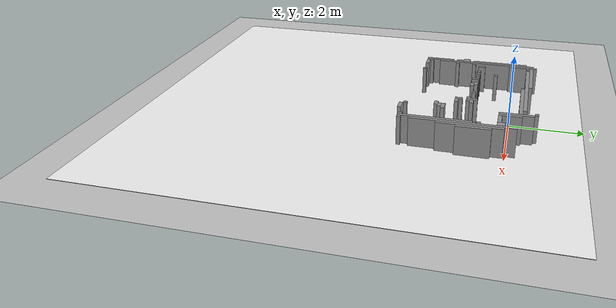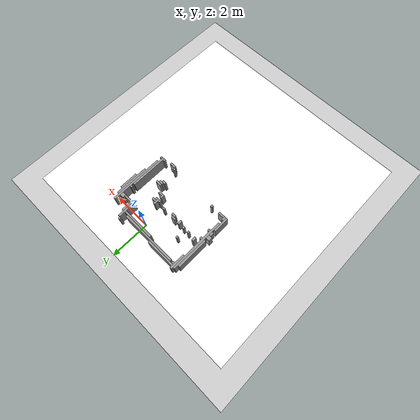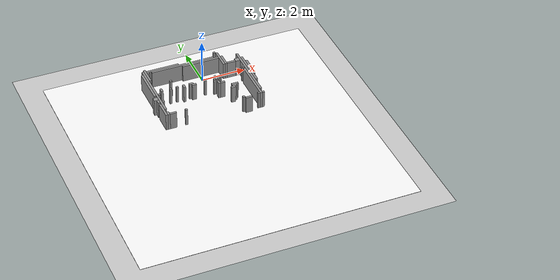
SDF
<?xml version="1.0"?>
<sdf version="1.6">
  <world name="default">

    <!-- Ground Plane -->
    <model name="ground_plane">
      <static>true</static>
      <link name="link">
        <collision name="collision">
          <geometry>
            <plane>
              <normal>0 0 1</normal>
              <size>100 100</size>
            </plane>
          </geometry>
          <surface>
            <friction>
              <ode>
                <mu>100</mu>
                <mu2>50</mu2>
              </ode>
            </friction>
          </surface>
        </collision>
        <visual name="visual">
          <cast_shadows>false</cast_shadows>
          <geometry>
            <plane>
              <normal>0 0 1</normal>
              <size>100 100</size>
            </plane>
          </geometry>
          <material>
            <ambient>0.8 0.8 0.8 1</ambient>
            <diffuse>0.8 0.8 0.8 1</diffuse>
            <specular>0.1 0.1 0.1 1</specular>
          </material>
        </visual>
      </link>
    </model>

    <!-- Sun -->
    <light name="sun" type="directional">
      <cast_shadows>true</cast_shadows>
      <pose>0 0 10 0 0 0</pose>
      <diffuse>0.8 0.8 0.8 1</diffuse>
      <specular>0.2 0.2 0.2 1</specular>
      <attenuation>
        <range>1000</range>
        <constant>0.9</constant>
        <linear>0.01</linear>
        <quadratic>0.001</quadratic>
      </attenuation>
      <direction>-0.5 0.1 -0.9</direction>
    </light>

    <scene>
      <shadows>false</shadows>
    </scene>

    <!-- Camera: top-down view centered on map -->
    <gui fullscreen='0'>
      <camera name='user_camera'>
        <pose frame=''>-0.8 -2.7 12.0 0 1.5708 0</pose>
        <view_controller>orbit</view_controller>
        <projection_type>perspective</projection_type>
      </camera>
    </gui>

    <!-- Balanced physics: stable contacts, reasonable WSL2 performance -->
    <physics type="ode">
      <real_time_update_rate>200.0</real_time_update_rate>
      <max_step_size>0.003</max_step_size>
      <real_time_factor>1</real_time_factor>
      <ode>
        <solver>
          <type>quick</type>
          <iters>80</iters>
          <precon_iters>0</precon_iters>
          <sor>1.400000</sor>
          <use_dynamic_moi_rescaling>1</use_dynamic_moi_rescaling>
        </solver>
        <constraints>
          <cfm>0.00001</cfm>
          <erp>0.2</erp>
          <contact_max_correcting_vel>2.0</contact_max_correcting_vel>
          <contact_surface_layer>0.01000</contact_surface_layer>
        </constraints>
      </ode>
    </physics>

    <!-- Gazebo ROS state plugin: provides /set_entity_state service -->
    <plugin name="gazebo_ros_state" filename="libgazebo_ros_state.so">
      <ros>
        <namespace>/</namespace>
      </ros>
      <update_rate>50</update_rate>
    </plugin>

    <!-- Map walls from SLAM data -->
    <include>
      <uri>model://map_walls</uri>
    </include>

  </world>
</sdf>

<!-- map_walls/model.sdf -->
<sdf version="1.6">
  <model name="map_walls">
    <static>true</static>
    <link name="walls">
      <collision name="collision_0">
        <pose>0.8400 0.7000 0.4000 0 0 0</pose>
        <geometry>
          <box><size>0.1000 0.1000 0.8</size></box>
        </geometry>
      </collision>
      <collision name="collision_1">
        <pose>-2.4600 0.2500 0.4000 0 0 0</pose>
        <geometry>
          <box><size>0.1000 0.8000 0.8</size></box>
        </geometry>
      </collision>
      <collision name="collision_2">
        <pose>0.9400 0.2000 0.4000 0 0 0</pose>
        <geometry>
          <box><size>0.1000 0.9000 0.8</size></box>
        </geometry>
      </collision>
      <collision name="collision_3">
        <pose>-2.5600 -0.8500 0.4000 0 0 0</pose>
        <geometry>
          <box><size>0.1000 2.8000 0.8</size></box>
        </geometry>
      </collision>
      <collision name="collision_4">
        <pose>-1.6600 0.5000 0.4000 0 0 0</pose>
        <geometry>
          <box><size>1.5000 0.1000 0.8</size></box>
        </geometry>
      </collision>
      <collision name="collision_5">
        <pose>-2.3600 0.4000 0.4000 0 0 0</pose>
        <geometry>
          <box><size>0.1000 0.1000 0.8</size></box>
        </geometry>
      </collision>
      <collision name="collision_6">
        <pose>-0.7600 0.4000 0.4000 0 0 0</pose>
        <geometry>
          <box><size>2.9000 0.1000 0.8</size></box>
        </geometry>
      </collision>
      <collision name="collision_7">
        <pose>-2.6600 -0.4500 0.4000 0 0 0</pose>
        <geometry>
          <box><size>0.1000 1.6000 0.8</size></box>
        </geometry>
      </collision>
      <collision name="collision_8">
        <pose>0.0400 0.3000 0.4000 0 0 0</pose>
        <geometry>
          <box><size>1.7000 0.1000 0.8</size></box>
        </geometry>
      </collision>
      <collision name="collision_9">
        <pose>1.0400 0.0500 0.4000 0 0 0</pose>
        <geometry>
          <box><size>0.1000 0.6000 0.8</size></box>
        </geometry>
      </collision>
      <collision name="collision_10">
        <pose>1.7400 -1.1000 0.4000 0 0 0</pose>
        <geometry>
          <box><size>0.1000 2.7000 0.8</size></box>
        </geometry>
      </collision>
      <collision name="collision_11">
        <pose>1.5900 -0.1500 0.4000 0 0 0</pose>
        <geometry>
          <box><size>0.2000 0.2000 0.8</size></box>
        </geometry>
      </collision>
      <collision name="collision_12">
        <pose>1.8400 -0.9000 0.4000 0 0 0</pose>
        <geometry>
          <box><size>0.1000 1.7000 0.8</size></box>
        </geometry>
      </collision>
      <collision name="collision_13">
        <pose>1.2900 -0.2000 0.4000 0 0 0</pose>
        <geometry>
          <box><size>0.4000 0.1000 0.8</size></box>
        </geometry>
      </collision>
      <collision name="collision_14">
        <pose>1.9400 -0.8000 0.4000 0 0 0</pose>
        <geometry>
          <box><size>0.1000 0.9000 0.8</size></box>
        </geometry>
      </collision>
      <collision name="collision_15">
        <pose>-1.6600 -0.5000 0.4000 0 0 0</pose>
        <geometry>
          <box><size>0.1000 0.1000 0.8</size></box>
        </geometry>
      </collision>
      <collision name="collision_16">
        <pose>1.6400 -0.7000 0.4000 0 0 0</pose>
        <geometry>
          <box><size>0.1000 0.1000 0.8</size></box>
        </geometry>
      </collision>
      <collision name="collision_17">
        <pose>-2.2600 -0.9500 0.4000 0 0 0</pose>
        <geometry>
          <box><size>0.1000 0.2000 0.8</size></box>
        </geometry>
      </collision>
      <collision name="collision_18">
        <pose>0.2400 -1.0000 0.4000 0 0 0</pose>
        <geometry>
          <box><size>0.1000 0.3000 0.8</size></box>
        </geometry>
      </collision>
      <collision name="collision_19">
        <pose>1.6400 -1.8000 0.4000 0 0 0</pose>
        <geometry>
          <box><size>0.1000 1.9000 0.8</size></box>
        </geometry>
      </collision>
      <collision name="collision_20">
        <pose>-1.8600 -1.0000 0.4000 0 0 0</pose>
        <geometry>
          <box><size>0.1000 0.1000 0.8</size></box>
        </geometry>
      </collision>
      <collision name="collision_21">
        <pose>-1.5600 -1.0000 0.4000 0 0 0</pose>
        <geometry>
          <box><size>0.1000 0.1000 0.8</size></box>
        </geometry>
      </collision>
      <collision name="collision_22">
        <pose>-1.2600 -1.0500 0.4000 0 0 0</pose>
        <geometry>
          <box><size>0.1000 0.2000 0.8</size></box>
        </geometry>
      </collision>
      <collision name="collision_23">
        <pose>-0.9100 -1.0000 0.4000 0 0 0</pose>
        <geometry>
          <box><size>0.2000 0.1000 0.8</size></box>
        </geometry>
      </collision>
      <collision name="collision_24">
        <pose>-0.2600 -1.0000 0.4000 0 0 0</pose>
        <geometry>
          <box><size>0.1000 0.1000 0.8</size></box>
        </geometry>
      </collision>
      <collision name="collision_25">
        <pose>0.3900 -1.0000 0.4000 0 0 0</pose>
        <geometry>
          <box><size>0.2000 0.1000 0.8</size></box>
        </geometry>
      </collision>
      <collision name="collision_26">
        <pose>-0.8100 -1.1000 0.4000 0 0 0</pose>
        <geometry>
          <box><size>0.2000 0.1000 0.8</size></box>
        </geometry>
      </collision>
      <collision name="collision_27">
        <pose>0.1400 -1.1000 0.4000 0 0 0</pose>
        <geometry>
          <box><size>0.1000 0.1000 0.8</size></box>
        </geometry>
      </collision>
      <collision name="collision_28">
        <pose>0.3400 -1.1000 0.4000 0 0 0</pose>
        <geometry>
          <box><size>0.1000 0.1000 0.8</size></box>
        </geometry>
      </collision>
      <collision name="collision_29">
        <pose>-2.4600 -1.2000 0.4000 0 0 0</pose>
        <geometry>
          <box><size>0.1000 0.1000 0.8</size></box>
        </geometry>
      </collision>
      <collision name="collision_30">
        <pose>0.2400 -1.3500 0.4000 0 0 0</pose>
        <geometry>
          <box><size>0.1000 0.2000 0.8</size></box>
        </geometry>
      </collision>
      <collision name="collision_31">
        <pose>-2.7100 -1.4500 0.4000 0 0 0</pose>
        <geometry>
          <box><size>0.2000 0.2000 0.8</size></box>
        </geometry>
      </collision>
      <collision name="collision_32">
        <pose>0.3900 -1.4000 0.4000 0 0 0</pose>
        <geometry>
          <box><size>0.2000 0.1000 0.8</size></box>
        </geometry>
      </collision>
      <collision name="collision_33">
        <pose>-2.6600 -1.6500 0.4000 0 0 0</pose>
        <geometry>
          <box><size>0.1000 0.2000 0.8</size></box>
        </geometry>
      </collision>
      <collision name="collision_34">
        <pose>-2.4600 -1.7000 0.4000 0 0 0</pose>
        <geometry>
          <box><size>0.1000 0.1000 0.8</size></box>
        </geometry>
      </collision>
      <collision name="collision_35">
        <pose>0.8400 -1.7000 0.4000 0 0 0</pose>
        <geometry>
          <box><size>0.3000 0.1000 0.8</size></box>
        </geometry>
      </collision>
      <collision name="collision_36">
        <pose>0.7900 -1.8000 0.4000 0 0 0</pose>
        <geometry>
          <box><size>0.2000 0.1000 0.8</size></box>
        </geometry>
      </collision>
      <collision name="collision_37">
        <pose>-2.6600 -2.2500 0.4000 0 0 0</pose>
        <geometry>
          <box><size>0.1000 0.8000 0.8</size></box>
        </geometry>
      </collision>
      <collision name="collision_38">
        <pose>0.6900 -1.9000 0.4000 0 0 0</pose>
        <geometry>
          <box><size>0.2000 0.1000 0.8</size></box>
        </geometry>
      </collision>
      <collision name="collision_39">
        <pose>-2.5600 -2.5500 0.4000 0 0 0</pose>
        <geometry>
          <box><size>0.1000 0.2000 0.8</size></box>
        </geometry>
      </collision>
      <collision name="collision_40">
        <pose>-2.3600 -2.6000 0.4000 0 0 0</pose>
        <geometry>
          <box><size>0.3000 0.1000 0.8</size></box>
        </geometry>
      </collision>
      <collision name="collision_41">
        <pose>-1.7600 -2.6000 0.4000 0 0 0</pose>
        <geometry>
          <box><size>0.1000 0.1000 0.8</size></box>
        </geometry>
      </collision>
      <collision name="collision_42">
        <pose>0.8400 -2.7000 0.4000 0 0 0</pose>
        <geometry>
          <box><size>0.1000 0.1000 0.8</size></box>
        </geometry>
      </collision>
      <collision name="collision_43">
        <pose>1.5400 -2.7000 0.4000 0 0 0</pose>
        <geometry>
          <box><size>0.1000 0.1000 0.8</size></box>
        </geometry>
      </collision>
      <collision name="collision_44">
        <pose>1.7400 -2.7000 0.4000 0 0 0</pose>
        <geometry>
          <box><size>0.1000 0.1000 0.8</size></box>
        </geometry>
      </collision>
      <collision name="collision_45">
        <pose>1.0400 -2.8000 0.4000 0 0 0</pose>
        <geometry>
          <box><size>0.3000 0.1000 0.8</size></box>
        </geometry>
      </collision>
      <visual name="visual_0">
        <pose>0.8400 0.7000 0.4000 0 0 0</pose>
        <geometry>
          <box><size>0.1000 0.1000 0.8</size></box>
        </geometry>
        <material>
          <ambient>0.5 0.5 0.5 1</ambient>
          <diffuse>0.6 0.6 0.6 1</diffuse>
        </material>
      </visual>
      <visual name="visual_1">
        <pose>-2.4600 0.2500 0.4000 0 0 0</pose>
        <geometry>
          <box><size>0.1000 0.8000 0.8</size></box>
        </geometry>
        <material>
          <ambient>0.5 0.5 0.5 1</ambient>
          <diffuse>0.6 0.6 0.6 1</diffuse>
        </material>
      </visual>
      <visual name="visual_2">
        <pose>0.9400 0.2000 0.4000 0 0 0</pose>
        <geometry>
          <box><size>0.1000 0.9000 0.8</size></box>
        </geometry>
        <material>
          <ambient>0.5 0.5 0.5 1</ambient>
          <diffuse>0.6 0.6 0.6 1</diffuse>
        </material>
      </visual>
      <visual name="visual_3">
        <pose>-2.5600 -0.8500 0.4000 0 0 0</pose>
        <geometry>
          <box><size>0.1000 2.8000 0.8</size></box>
        </geometry>
        <material>
          <ambient>0.5 0.5 0.5 1</ambient>
          <diffuse>0.6 0.6 0.6 1</diffuse>
        </material>
      </visual>
      <visual name="visual_4">
        <pose>-1.6600 0.5000 0.4000 0 0 0</pose>
        <geometry>
          <box><size>1.5000 0.1000 0.8</size></box>
        </geometry>
        <material>
          <ambient>0.5 0.5 0.5 1</ambient>
          <diffuse>0.6 0.6 0.6 1</diffuse>
        </material>
      </visual>
      <visual name="visual_5">
        <pose>-2.3600 0.4000 0.4000 0 0 0</pose>
        <geometry>
          <box><size>0.1000 0.1000 0.8</size></box>
        </geometry>
        <material>
          <ambient>0.5 0.5 0.5 1</ambient>
          <diffuse>0.6 0.6 0.6 1</diffuse>
        </material>
      </visual>
      <visual name="visual_6">
        <pose>-0.7600 0.4000 0.4000 0 0 0</pose>
        <geometry>
          <box><size>2.9000 0.1000 0.8</size></box>
        </geometry>
        <material>
          <ambient>0.5 0.5 0.5 1</ambient>
          <diffuse>0.6 0.6 0.6 1</diffuse>
        </material>
      </visual>
      <visual name="visual_7">
        <pose>-2.6600 -0.4500 0.4000 0 0 0</pose>
        <geometry>
          <box><size>0.1000 1.6000 0.8</size></box>
        </geometry>
        <material>
          <ambient>0.5 0.5 0.5 1</ambient>
          <diffuse>0.6 0.6 0.6 1</diffuse>
        </material>
      </visual>
      <visual name="visual_8">
        <pose>0.0400 0.3000 0.4000 0 0 0</pose>
        <geometry>
          <box><size>1.7000 0.1000 0.8</size></box>
        </geometry>
        <material>
          <ambient>0.5 0.5 0.5 1</ambient>
          <diffuse>0.6 0.6 0.6 1</diffuse>
        </material>
      </visual>
      <visual name="visual_9">
        <pose>1.0400 0.0500 0.4000 0 0 0</pose>
        <geometry>
          <box><size>0.1000 0.6000 0.8</size></box>
        </geometry>
        <material>
          <ambient>0.5 0.5 0.5 1</ambient>
          <diffuse>0.6 0.6 0.6 1</diffuse>
        </material>
      </visual>
      <visual name="visual_10">
        <pose>1.7400 -1.1000 0.4000 0 0 0</pose>
        <geometry>
          <box><size>0.1000 2.7000 0.8</size></box>
        </geometry>
        <material>
          <ambient>0.5 0.5 0.5 1</ambient>
          <diffuse>0.6 0.6 0.6 1</diffuse>
        </material>
      </visual>
      <visual name="visual_11">
        <pose>1.5900 -0.1500 0.4000 0 0 0</pose>
        <geometry>
          <box><size>0.2000 0.2000 0.8</size></box>
        </geometry>
        <material>
          <ambient>0.5 0.5 0.5 1</ambient>
          <diffuse>0.6 0.6 0.6 1</diffuse>
        </material>
      </visual>
      <visual name="visual_12">
        <pose>1.8400 -0.9000 0.4000 0 0 0</pose>
        <geometry>
          <box><size>0.1000 1.7000 0.8</size></box>
        </geometry>
        <material>
          <ambient>0.5 0.5 0.5 1</ambient>
          <diffuse>0.6 0.6 0.6 1</diffuse>
        </material>
      </visual>
      <visual name="visual_13">
        <pose>1.2900 -0.2000 0.4000 0 0 0</pose>
        <geometry>
          <box><size>0.4000 0.1000 0.8</size></box>
        </geometry>
        <material>
          <ambient>0.5 0.5 0.5 1</ambient>
          <diffuse>0.6 0.6 0.6 1</diffuse>
        </material>
      </visual>
      <visual name="visual_14">
        <pose>1.9400 -0.8000 0.4000 0 0 0</pose>
        <geometry>
          <box><size>0.1000 0.9000 0.8</size></box>
        </geometry>
        <material>
          <ambient>0.5 0.5 0.5 1</ambient>
          <diffuse>0.6 0.6 0.6 1</diffuse>
        </material>
      </visual>
      <visual name="visual_15">
        <pose>-1.6600 -0.5000 0.4000 0 0 0</pose>
        <geometry>
          <box><size>0.1000 0.1000 0.8</size></box>
        </geometry>
        <material>
          <ambient>0.5 0.5 0.5 1</ambient>
          <diffuse>0.6 0.6 0.6 1</diffuse>
        </material>
      </visual>
      <visual name="visual_16">
        <pose>1.6400 -0.7000 0.4000 0 0 0</pose>
        <geometry>
          <box><size>0.1000 0.1000 0.8</size></box>
        </geometry>
        <material>
          <ambient>0.5 0.5 0.5 1</ambient>
          <diffuse>0.6 0.6 0.6 1</diffuse>
        </material>
      </visual>
      <visual name="visual_17">
        <pose>-2.2600 -0.9500 0.4000 0 0 0</pose>
        <geometry>
          <box><size>0.1000 0.2000 0.8</size></box>
        </geometry>
        <material>
          <ambient>0.5 0.5 0.5 1</ambient>
          <diffuse>0.6 0.6 0.6 1</diffuse>
        </material>
      </visual>
      <visual name="visual_18">
        <pose>0.2400 -1.0000 0.4000 0 0 0</pose>
        <geometry>
          <box><size>0.1000 0.3000 0.8</size></box>
        </geometry>
        <material>
          <ambient>0.5 0.5 0.5 1</ambient>
          <diffuse>0.6 0.6 0.6 1</diffuse>
        </material>
      </visual>
      <visual name="visual_19">
        <pose>1.6400 -1.8000 0.4000 0 0 0</pose>
        <geometry>
          <box><size>0.1000 1.9000 0.8</size></box>
        </geometry>
        <material>
          <ambient>0.5 0.5 0.5 1</ambient>
          <diffuse>0.6 0.6 0.6 1</diffuse>
        </material>
      </visual>
      <visual name="visual_20">
        <pose>-1.8600 -1.0000 0.4000 0 0 0</pose>
        <geometry>
          <box><size>0.1000 0.1000 0.8</size></box>
        </geometry>
        <material>
          <ambient>0.5 0.5 0.5 1</ambient>
          <diffuse>0.6 0.6 0.6 1</diffuse>
        </material>
      </visual>
      <visual name="visual_21">
        <pose>-1.5600 -1.0000 0.4000 0 0 0</pose>
        <geometry>
          <box><size>0.1000 0.1000 0.8</size></box>
        </geometry>
        <material>
          <ambient>0.5 0.5 0.5 1</ambient>
          <diffuse>0.6 0.6 0.6 1</diffuse>
        </material>
      </visual>
      <visual name="visual_22">
        <pose>-1.2600 -1.0500 0.4000 0 0 0</pose>
        <geometry>
          <box><size>0.1000 0.2000 0.8</size></box>
        </geometry>
        <material>
          <ambient>0.5 0.5 0.5 1</ambient>
          <diffuse>0.6 0.6 0.6 1</diffuse>
        </material>
      </visual>
      <visual name="visual_23">
        <pose>-0.9100 -1.0000 0.4000 0 0 0</pose>
        <geometry>
          <box><size>0.2000 0.1000 0.8</size></box>
        </geometry>
        <material>
          <ambient>0.5 0.5 0.5 1</ambient>
          <diffuse>0.6 0.6 0.6 1</diffuse>
        </material>
      </visual>
      <visual name="visual_24">
        <pose>-0.2600 -1.0000 0.4000 0 0 0</pose>
        <geometry>
          <box><size>0.1000 0.1000 0.8</size></box>
        </geometry>
        <material>
          <ambient>0.5 0.5 0.5 1</ambient>
          <diffuse>0.6 0.6 0.6 1</diffuse>
        </material>
      </visual>
      <visual name="visual_25">
        <pose>0.3900 -1.0000 0.4000 0 0 0</pose>
        <geometry>
          <box><size>0.2000 0.1000 0.8</size></box>
        </geometry>
        <material>
          <ambient>0.5 0.5 0.5 1</ambient>
          <diffuse>0.6 0.6 0.6 1</diffuse>
        </material>
      </visual>
      <visual name="visual_26">
        <pose>-0.8100 -1.1000 0.4000 0 0 0</pose>
        <geometry>
          <box><size>0.2000 0.1000 0.8</size></box>
        </geometry>
        <material>
          <ambient>0.5 0.5 0.5 1</ambient>
          <diffuse>0.6 0.6 0.6 1</diffuse>
        </material>
      </visual>
      <visual name="visual_27">
        <pose>0.1400 -1.1000 0.4000 0 0 0</pose>
        <geometry>
          <box><size>0.1000 0.1000 0.8</size></box>
        </geometry>
        <material>
          <ambient>0.5 0.5 0.5 1</ambient>
          <diffuse>0.6 0.6 0.6 1</diffuse>
        </material>
      </visual>
      <visual name="visual_28">
        <pose>0.3400 -1.1000 0.4000 0 0 0</pose>
        <geometry>
          <box><size>0.1000 0.1000 0.8</size></box>
        </geometry>
        <material>
          <ambient>0.5 0.5 0.5 1</ambient>
          <diffuse>0.6 0.6 0.6 1</diffuse>
        </material>
      </visual>
      <visual name="visual_29">
        <pose>-2.4600 -1.2000 0.4000 0 0 0</pose>
        <geometry>
          <box><size>0.1000 0.1000 0.8</size></box>
        </geometry>
        <material>
          <ambient>0.5 0.5 0.5 1</ambient>
          <diffuse>0.6 0.6 0.6 1</diffuse>
        </material>
      </visual>
      <visual name="visual_30">
        <pose>0.2400 -1.3500 0.4000 0 0 0</pose>
        <geometry>
          <box><size>0.1000 0.2000 0.8</size></box>
        </geometry>
        <material>
          <ambient>0.5 0.5 0.5 1</ambient>
          <diffuse>0.6 0.6 0.6 1</diffuse>
        </material>
      </visual>
      <visual name="visual_31">
        <pose>-2.7100 -1.4500 0.4000 0 0 0</pose>
        <geometry>
          <box><size>0.2000 0.2000 0.8</size></box>
        </geometry>
        <material>
          <ambient>0.5 0.5 0.5 1</ambient>
          <diffuse>0.6 0.6 0.6 1</diffuse>
        </material>
      </visual>
      <visual name="visual_32">
        <pose>0.3900 -1.4000 0.4000 0 0 0</pose>
        <geometry>
          <box><size>0.2000 0.1000 0.8</size></box>
        </geometry>
        <material>
          <ambient>0.5 0.5 0.5 1</ambient>
          <diffuse>0.6 0.6 0.6 1</diffuse>
        </material>
      </visual>
      <visual name="visual_33">
        <pose>-2.6600 -1.6500 0.4000 0 0 0</pose>
        <geometry>
          <box><size>0.1000 0.2000 0.8</size></box>
        </geometry>
        <material>
          <ambient>0.5 0.5 0.5 1</ambient>
          <diffuse>0.6 0.6 0.6 1</diffuse>
        </material>
      </visual>
      <visual name="visual_34">
        <pose>-2.4600 -1.7000 0.4000 0 0 0</pose>
        <geometry>
          <box><size>0.1000 0.1000 0.8</size></box>
        </geometry>
        <material>
          <ambient>0.5 0.5 0.5 1</ambient>
          <diffuse>0.6 0.6 0.6 1</diffuse>
        </material>
      </visual>
      <visual name="visual_35">
        <pose>0.8400 -1.7000 0.4000 0 0 0</pose>
        <geometry>
          <box><size>0.3000 0.1000 0.8</size></box>
        </geometry>
        <material>
          <ambient>0.5 0.5 0.5 1</ambient>
          <diffuse>0.6 0.6 0.6 1</diffuse>
        </material>
      </visual>
      <visual name="visual_36">
        <pose>0.7900 -1.8000 0.4000 0 0 0</pose>
        <geometry>
          <box><size>0.2000 0.1000 0.8</size></box>
        </geometry>
        <material>
          <ambient>0.5 0.5 0.5 1</ambient>
          <diffuse>0.6 0.6 0.6 1</diffuse>
        </material>
      </visual>
      <visual name="visual_37">
        <pose>-2.6600 -2.2500 0.4000 0 0 0</pose>
        <geometry>
          <box><size>0.1000 0.8000 0.8</size></box>
        </geometry>
        <material>
          <ambient>0.5 0.5 0.5 1</ambient>
          <diffuse>0.6 0.6 0.6 1</diffuse>
        </material>
      </visual>
      <visual name="visual_38">
        <pose>0.6900 -1.9000 0.4000 0 0 0</pose>
        <geometry>
          <box><size>0.2000 0.1000 0.8</size></box>
        </geometry>
        <material>
          <ambient>0.5 0.5 0.5 1</ambient>
          <diffuse>0.6 0.6 0.6 1</diffuse>
        </material>
      </visual>
      <visual name="visual_39">
        <pose>-2.5600 -2.5500 0.4000 0 0 0</pose>
        <geometry>
          <box><size>0.1000 0.2000 0.8</size></box>
        </geometry>
        <material>
          <ambient>0.5 0.5 0.5 1</ambient>
          <diffuse>0.6 0.6 0.6 1</diffuse>
        </material>
      </visual>
      <visual name="visual_40">
        <pose>-2.3600 -2.6000 0.4000 0 0 0</pose>
        <geometry>
          <box><size>0.3000 0.1000 0.8</size></box>
        </geometry>
        <material>
          <ambient>0.5 0.5 0.5 1</ambient>
          <diffuse>0.6 0.6 0.6 1</diffuse>
        </material>
      </visual>
      <visual name="visual_41">
        <pose>-1.7600 -2.6000 0.4000 0 0 0</pose>
        <geometry>
          <box><size>0.1000 0.1000 0.8</size></box>
        </geometry>
        <material>
          <ambient>0.5 0.5 0.5 1</ambient>
          <diffuse>0.6 0.6 0.6 1</diffuse>
        </material>
      </visual>
      <visual name="visual_42">
        <pose>0.8400 -2.7000 0.4000 0 0 0</pose>
        <geometry>
          <box><size>0.1000 0.1000 0.8</size></box>
        </geometry>
        <material>
          <ambient>0.5 0.5 0.5 1</ambient>
          <diffuse>0.6 0.6 0.6 1</diffuse>
        </material>
      </visual>
      <visual name="visual_43">
        <pose>1.5400 -2.7000 0.4000 0 0 0</pose>
        <geometry>
          <box><size>0.1000 0.1000 0.8</size></box>
        </geometry>
        <material>
          <ambient>0.5 0.5 0.5 1</ambient>
          <diffuse>0.6 0.6 0.6 1</diffuse>
        </material>
      </visual>
      <visual name="visual_44">
        <pose>1.7400 -2.7000 0.4000 0 0 0</pose>
        <geometry>
          <box><size>0.1000 0.1000 0.8</size></box>
        </geometry>
        <material>
          <ambient>0.5 0.5 0.5 1</ambient>
          <diffuse>0.6 0.6 0.6 1</diffuse>
        </material>
      </visual>
      <visual name="visual_45">
        <pose>1.0400 -2.8000 0.4000 0 0 0</pose>
        <geometry>
          <box><size>0.3000 0.1000 0.8</size></box>
        </geometry>
        <material>
          <ambient>0.5 0.5 0.5 1</ambient>
          <diffuse>0.6 0.6 0.6 1</diffuse>
        </material>
      </visual>
      <visual name="map_floor">
        <pose>-0.6100 -4.1750 0.001 0 0 0</pose>
        <geometry>
          <plane><normal>0 0 1</normal><size>12.2000 12.2500</size></plane>
        </geometry>
        <material>
          <ambient>1 1 1 1</ambient>
          <diffuse>1 1 1 1</diffuse>
          <script>
            <uri>model://map_walls/materials</uri>
            <name>MapFloor/Image</name>
          </script>
        </material>
      </visual>
    </link>
  </model>
</sdf>
